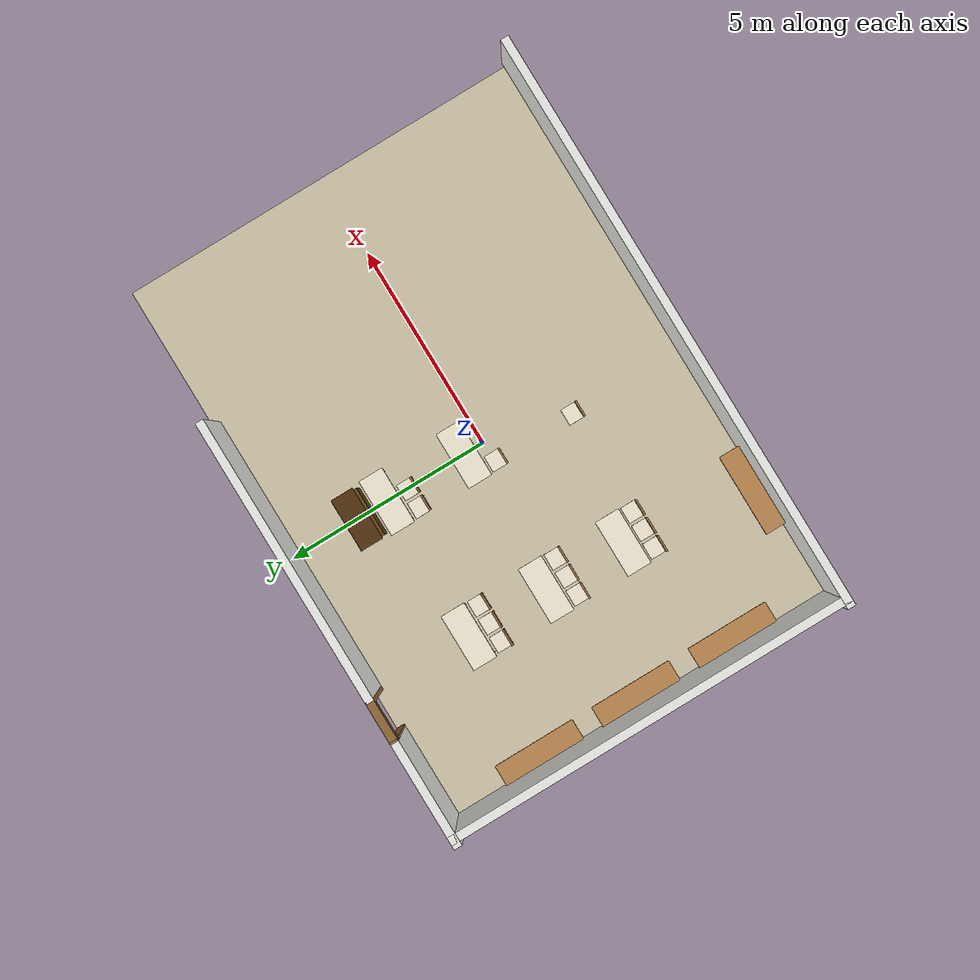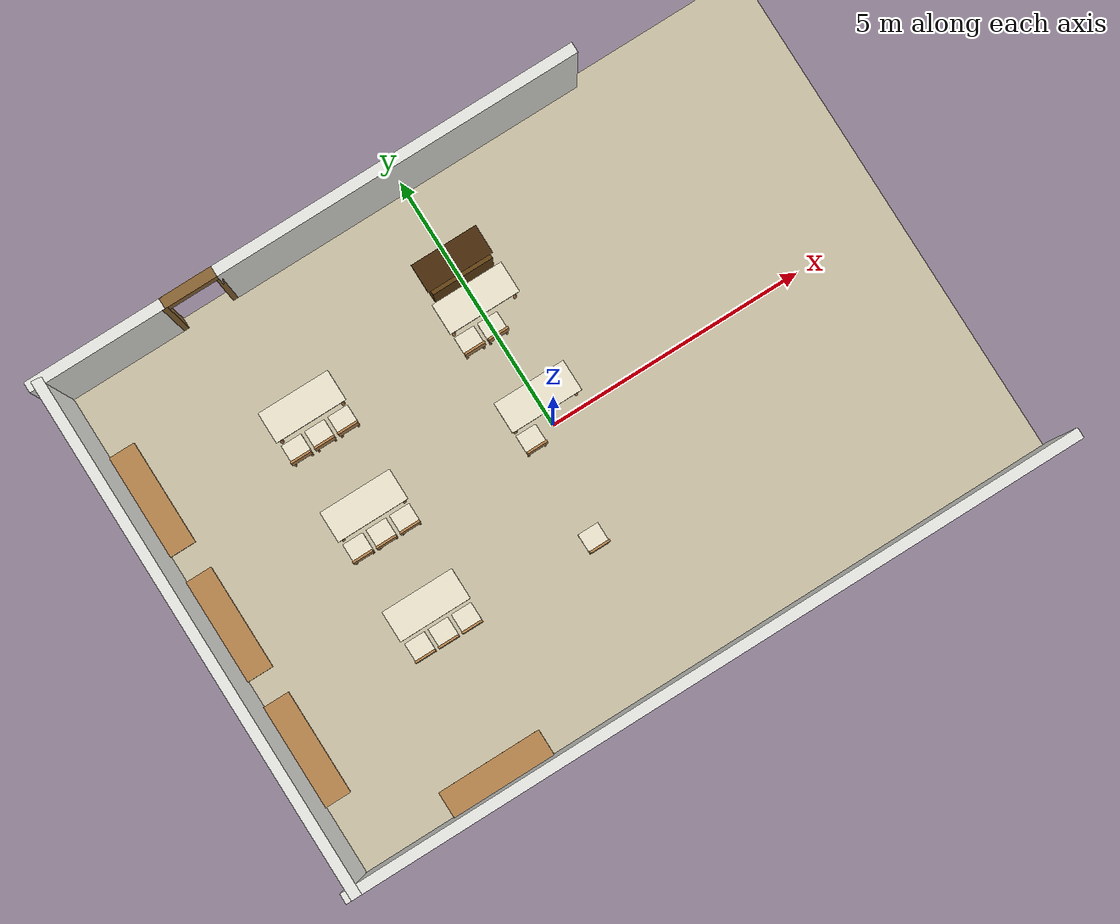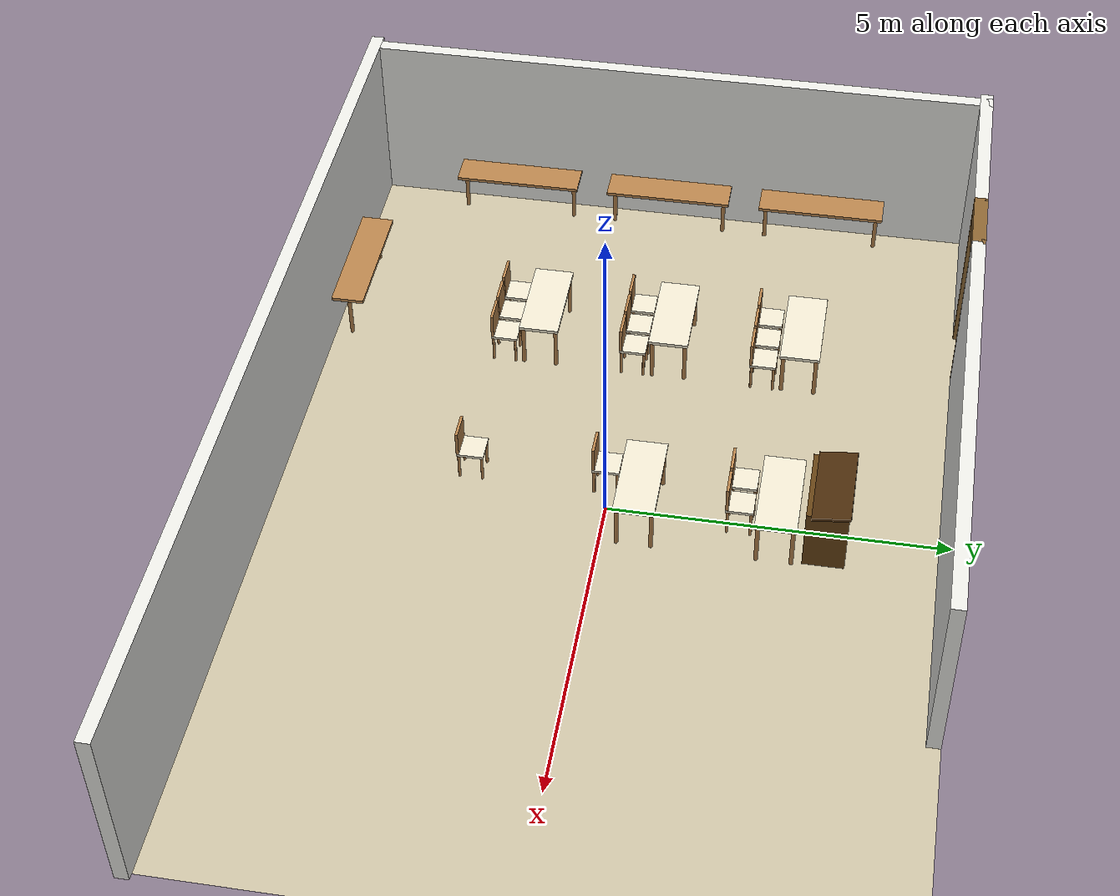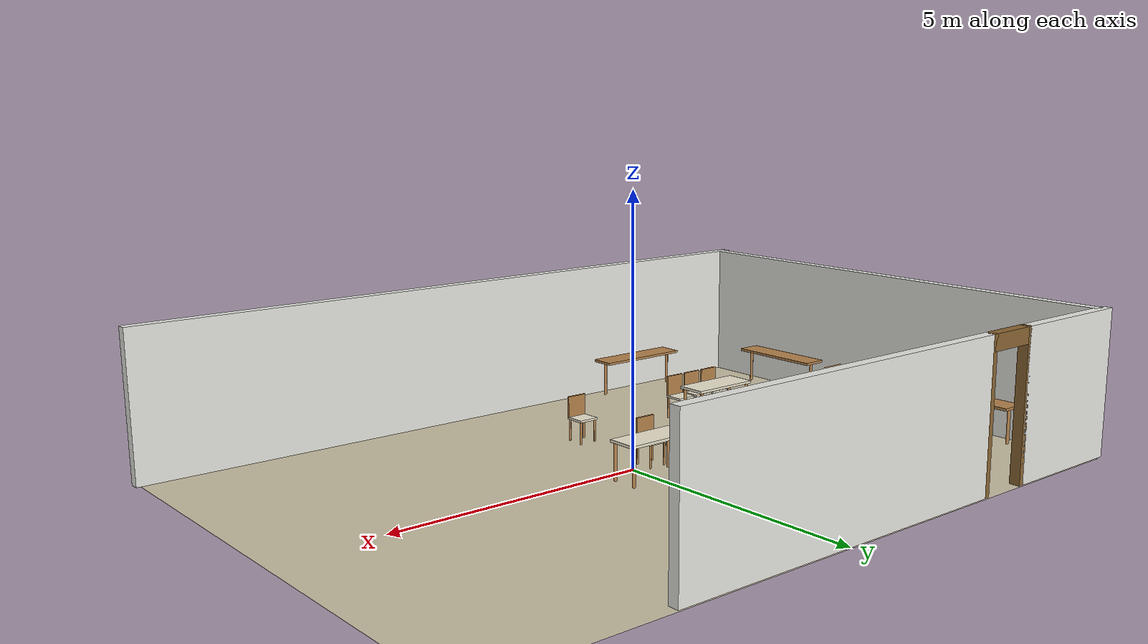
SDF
<sdf version="1.10">
 <world name="mecanum_classroom">
  <model name="floor">
   <static>true</static>
   <link name="link">
    <collision name="col">
     <geometry><plane><normal>0 0 1</normal><size>14 10</size></plane></geometry>
     <surface><friction><ode><mu>0.9</mu><mu2>0.9</mu2></ode></friction></surface>
    </collision>
    <visual name="vis">
     <geometry><plane><normal>0 0 1</normal><size>14 10</size></plane></geometry>
     <material><ambient>0.80 0.76 0.65 1</ambient><diffuse>0.80 0.76 0.65 1</diffuse></material>
    </visual>
   </link>
  </model>
  <model name="wall_north_A">
   <static>true</static>
   <pose>-5.8 4.9 1.4 0 0 0</pose>
   <link name="link">
    <collision name="col"><geometry><box><size>2.6 0.2 2.8</size></box></geometry></collision>
    <visual name="vis">
     <geometry><box><size>2.6 0.2 2.8</size></box></geometry>
     <material><ambient>0.92 0.92 0.90 1</ambient><diffuse>0.92 0.92 0.90 1</diffuse></material>
    </visual>
   </link>
  </model>
  <model name="wall_north_B">
   <static>true</static>
   <pose>0.0 4.9 1.4 0 0 0</pose>
   <link name="link">
    <collision name="col"><geometry><box><size>7.0 0.2 2.8</size></box></geometry></collision>
    <visual name="vis">
     <geometry><box><size>7.0 0.2 2.8</size></box></geometry>
     <material><ambient>0.92 0.92 0.90 1</ambient><diffuse>0.92 0.92 0.90 1</diffuse></material>
    </visual>
   </link>
  </model>
  <model name="wall_south">
   <static>true</static>
   <pose>0.0 -4.9 1.4 0 0 0</pose>
   <link name="link">
    <collision name="col"><geometry><box><size>14.2 0.2 2.8</size></box></geometry></collision>
    <visual name="vis">
     <geometry><box><size>14.2 0.2 2.8</size></box></geometry>
     <material><ambient>0.92 0.92 0.90 1</ambient><diffuse>0.92 0.92 0.90 1</diffuse></material>
    </visual>
   </link>
  </model>
  <model name="wall_west">
   <static>true</static>
   <pose>-6.9 0.0 1.4 0 0 0</pose>
   <link name="link">
    <collision name="col"><geometry><box><size>0.2 10.0 2.8</size></box></geometry></collision>
    <visual name="vis">
     <geometry><box><size>0.2 10.0 2.8</size></box></geometry>
     <material><ambient>0.92 0.92 0.90 1</ambient><diffuse>0.92 0.92 0.90 1</diffuse></material>
    </visual>
   </link>
  </model>
  <model name="door_pillar_LL">
   <static>true</static>
   <pose>-4.5 4.9 1.4 0 0 0</pose>
   <link name="link">
    <collision name="col"><geometry><box><size>0.1 0.2 2.8</size></box></geometry></collision>
    <visual name="vis">
     <geometry><box><size>0.1 0.2 2.8</size></box></geometry>
     <material><ambient>0.55 0.40 0.20 1</ambient><diffuse>0.55 0.40 0.20 1</diffuse></material>
    </visual>
   </link>
  </model>
  <model name="door_pillar_LR">
   <static>true</static>
   <pose>-3.5 4.9 1.4 0 0 0</pose>
   <link name="link">
    <collision name="col"><geometry><box><size>0.1 0.2 2.8</size></box></geometry></collision>
    <visual name="vis">
     <geometry><box><size>0.1 0.2 2.8</size></box></geometry>
     <material><ambient>0.55 0.40 0.20 1</ambient><diffuse>0.55 0.40 0.20 1</diffuse></material>
    </visual>
   </link>
  </model>
  <model name="door_L_lintel">
   <static>true</static>
   <pose>-4.0 4.9 2.65 0 0 0</pose>
   <link name="link">
    <collision name="col"><geometry><box><size>1.0 0.2 0.3</size></box></geometry></collision>
    <visual name="vis">
     <geometry><box><size>1.0 0.2 0.3</size></box></geometry>
     <material><ambient>0.55 0.40 0.20 1</ambient><diffuse>0.55 0.40 0.20 1</diffuse></material>
    </visual>
   </link>
  </model>
  <model name="teacher_stand_base">
   <static>true</static>
   <pose>0 3.2 0.5 0 0 0</pose>
   <link name="link">
    <collision name="col"><geometry><box><size>1.2 0.6 1.0</size></box></geometry></collision>
    <visual name="vis">
     <geometry><box><size>1.2 0.6 1.0</size></box></geometry>
     <material><ambient>0.40 0.26 0.08 1</ambient><diffuse>0.40 0.26 0.08 1</diffuse></material>
    </visual>
   </link>
  </model>
  <model name="teacher_stand_top">
   <static>true</static>
   <pose>0 3.25 1.02 0.12 0 0</pose>
   <link name="link">
    <collision name="col"><geometry><box><size>1.3 0.55 0.05</size></box></geometry></collision>
    <visual name="vis">
     <geometry><box><size>1.3 0.55 0.05</size></box></geometry>
     <material><ambient>0.30 0.18 0.05 1</ambient><diffuse>0.30 0.18 0.05 1</diffuse></material>
    </visual>
   </link>
  </model>
  <model name="tbl_r1c1_top">
   <static>true</static>
   <pose>-3.5 2.5 0.73 0 0 0</pose>
   <link name="link">
    <collision name="col"><geometry><box><size>1.4 0.6 0.05</size></box></geometry></collision>
    <visual name="vis">
     <geometry><box><size>1.4 0.6 0.05</size></box></geometry>
     <material><ambient>0.94 0.91 0.82 1</ambient><diffuse>0.94 0.91 0.82 1</diffuse></material>
    </visual>
   </link>
  </model>
  <model name="tbl_r1c1_legs">
   <static>true</static>
   <pose>-3.5 2.5 0.36 0 0 0</pose>
   <link name="link">
    <collision name="col"><geometry><box><size>1.4 0.6 0.72</size></box></geometry></collision>
    <visual name="leg_fl">
     <pose>-0.62 -0.25 0 0 0 0</pose>
     <geometry><cylinder><radius>0.03</radius><length>0.72</length></cylinder></geometry>
     <material><ambient>0.72 0.52 0.30 1</ambient><diffuse>0.72 0.52 0.30 1</diffuse></material>
    </visual>
    <visual name="leg_fr">
     <pose>0.62 -0.25 0 0 0 0</pose>
     <geometry><cylinder><radius>0.03</radius><length>0.72</length></cylinder></geometry>
     <material><ambient>0.72 0.52 0.30 1</ambient><diffuse>0.72 0.52 0.30 1</diffuse></material>
    </visual>
    <visual name="leg_bl">
     <pose>-0.62 0.25 0 0 0 0</pose>
     <geometry><cylinder><radius>0.03</radius><length>0.72</length></cylinder></geometry>
     <material><ambient>0.72 0.52 0.30 1</ambient><diffuse>0.72 0.52 0.30 1</diffuse></material>
    </visual>
    <visual name="leg_br">
     <pose>0.62 0.25 0 0 0 0</pose>
     <geometry><cylinder><radius>0.03</radius><length>0.72</length></cylinder></geometry>
     <material><ambient>0.72 0.52 0.30 1</ambient><diffuse>0.72 0.52 0.30 1</diffuse></material>
    </visual>
   </link>
  </model>
  <model name="chr_r1c1_a">
   <static>true</static>
   <pose>-3.97 1.95 0.45 0 0 0</pose>
   <link name="link">
    <visual name="seat">
     <geometry><box><size>0.40 0.40 0.04</size></box></geometry>
     <material><ambient>0.94 0.91 0.82 1</ambient><diffuse>0.94 0.91 0.82 1</diffuse></material>
    </visual>
    <visual name="back">
     <pose>0 -0.18 0.22 0 0 0</pose>
     <geometry><box><size>0.40 0.04 0.40</size></box></geometry>
     <material><ambient>0.72 0.52 0.30 1</ambient><diffuse>0.72 0.52 0.30 1</diffuse></material>
    </visual>
    <visual name="leg_fl">
     <pose>-0.17 -0.17 -0.225 0 0 0</pose>
     <geometry><cylinder><radius>0.02</radius><length>0.45</length></cylinder></geometry>
     <material><ambient>0.72 0.52 0.30 1</ambient><diffuse>0.72 0.52 0.30 1</diffuse></material>
    </visual>
    <visual name="leg_fr">
     <pose>0.17 -0.17 -0.225 0 0 0</pose>
     <geometry><cylinder><radius>0.02</radius><length>0.45</length></cylinder></geometry>
     <material><ambient>0.72 0.52 0.30 1</ambient><diffuse>0.72 0.52 0.30 1</diffuse></material>
    </visual>
    <visual name="leg_bl">
     <pose>-0.17 0.17 -0.225 0 0 0</pose>
     <geometry><cylinder><radius>0.02</radius><length>0.45</length></cylinder></geometry>
     <material><ambient>0.72 0.52 0.30 1</ambient><diffuse>0.72 0.52 0.30 1</diffuse></material>
    </visual>
    <visual name="leg_br">
     <pose>0.17 0.17 -0.225 0 0 0</pose>
     <geometry><cylinder><radius>0.02</radius><length>0.45</length></cylinder></geometry>
     <material><ambient>0.72 0.52 0.30 1</ambient><diffuse>0.72 0.52 0.30 1</diffuse></material>
    </visual>
    <collision name="col"><geometry><box><size>0.40 0.40 0.04</size></box></geometry></collision>
   </link>
  </model>
  <model name="chr_r1c1_b">
   <static>true</static>
   <pose>-3.5 1.95 0.45 0 0 0</pose>
   <link name="link">
    <visual name="seat">
     <geometry><box><size>0.40 0.40 0.04</size></box></geometry>
     <material><ambient>0.94 0.91 0.82 1</ambient><diffuse>0.94 0.91 0.82 1</diffuse></material>
    </visual>
    <visual name="back">
     <pose>0 -0.18 0.22 0 0 0</pose>
     <geometry><box><size>0.40 0.04 0.40</size></box></geometry>
     <material><ambient>0.72 0.52 0.30 1</ambient><diffuse>0.72 0.52 0.30 1</diffuse></material>
    </visual>
    <visual name="leg_fl">
     <pose>-0.17 -0.17 -0.225 0 0 0</pose>
     <geometry><cylinder><radius>0.02</radius><length>0.45</length></cylinder></geometry>
     <material><ambient>0.72 0.52 0.30 1</ambient><diffuse>0.72 0.52 0.30 1</diffuse></material>
    </visual>
    <visual name="leg_fr">
     <pose>0.17 -0.17 -0.225 0 0 0</pose>
     <geometry><cylinder><radius>0.02</radius><length>0.45</length></cylinder></geometry>
     <material><ambient>0.72 0.52 0.30 1</ambient><diffuse>0.72 0.52 0.30 1</diffuse></material>
    </visual>
    <visual name="leg_bl">
     <pose>-0.17 0.17 -0.225 0 0 0</pose>
     <geometry><cylinder><radius>0.02</radius><length>0.45</length></cylinder></geometry>
     <material><ambient>0.72 0.52 0.30 1</ambient><diffuse>0.72 0.52 0.30 1</diffuse></material>
    </visual>
    <visual name="leg_br">
     <pose>0.17 0.17 -0.225 0 0 0</pose>
     <geometry><cylinder><radius>0.02</radius><length>0.45</length></cylinder></geometry>
     <material><ambient>0.72 0.52 0.30 1</ambient><diffuse>0.72 0.52 0.30 1</diffuse></material>
    </visual>
    <collision name="col"><geometry><box><size>0.40 0.40 0.04</size></box></geometry></collision>
   </link>
  </model>
  <model name="chr_r1c1_c">
   <static>true</static>
   <pose>-3.03 1.95 0.45 0 0 0</pose>
   <link name="link">
    <visual name="seat">
     <geometry><box><size>0.40 0.40 0.04</size></box></geometry>
     <material><ambient>0.94 0.91 0.82 1</ambient><diffuse>0.94 0.91 0.82 1</diffuse></material>
    </visual>
    <visual name="back">
     <pose>0 -0.18 0.22 0 0 0</pose>
     <geometry><box><size>0.40 0.04 0.40</size></box></geometry>
     <material><ambient>0.72 0.52 0.30 1</ambient><diffuse>0.72 0.52 0.30 1</diffuse></material>
    </visual>
    <visual name="leg_fl">
     <pose>-0.17 -0.17 -0.225 0 0 0</pose>
     <geometry><cylinder><radius>0.02</radius><length>0.45</length></cylinder></geometry>
     <material><ambient>0.72 0.52 0.30 1</ambient><diffuse>0.72 0.52 0.30 1</diffuse></material>
    </visual>
    <visual name="leg_fr">
     <pose>0.17 -0.17 -0.225 0 0 0</pose>
     <geometry><cylinder><radius>0.02</radius><length>0.45</length></cylinder></geometry>
     <material><ambient>0.72 0.52 0.30 1</ambient><diffuse>0.72 0.52 0.30 1</diffuse></material>
    </visual>
    <visual name="leg_bl">
     <pose>-0.17 0.17 -0.225 0 0 0</pose>
     <geometry><cylinder><radius>0.02</radius><length>0.45</length></cylinder></geometry>
     <material><ambient>0.72 0.52 0.30 1</ambient><diffuse>0.72 0.52 0.30 1</diffuse></material>
    </visual>
    <visual name="leg_br">
     <pose>0.17 0.17 -0.225 0 0 0</pose>
     <geometry><cylinder><radius>0.02</radius><length>0.45</length></cylinder></geometry>
     <material><ambient>0.72 0.52 0.30 1</ambient><diffuse>0.72 0.52 0.30 1</diffuse></material>
    </visual>
    <collision name="col"><geometry><box><size>0.40 0.40 0.04</size></box></geometry></collision>
   </link>
  </model>
  <model name="tbl_r1c2_top">
   <static>true</static>
   <pose>0.0 2.5 0.73 0 0 0</pose>
   <link name="link">
    <collision name="col"><geometry><box><size>1.4 0.6 0.05</size></box></geometry></collision>
    <visual name="vis">
     <geometry><box><size>1.4 0.6 0.05</size></box></geometry>
     <material><ambient>0.94 0.91 0.82 1</ambient><diffuse>0.94 0.91 0.82 1</diffuse></material>
    </visual>
   </link>
  </model>
  <model name="tbl_r1c2_legs">
   <static>true</static>
   <pose>0.0 2.5 0.36 0 0 0</pose>
   <link name="link">
    <collision name="col"><geometry><box><size>1.4 0.6 0.72</size></box></geometry></collision>
    <visual name="leg_fl">
     <pose>-0.62 -0.25 0 0 0 0</pose>
     <geometry><cylinder><radius>0.03</radius><length>0.72</length></cylinder></geometry>
     <material><ambient>0.72 0.52 0.30 1</ambient><diffuse>0.72 0.52 0.30 1</diffuse></material>
    </visual>
    <visual name="leg_fr">
     <pose>0.62 -0.25 0 0 0 0</pose>
     <geometry><cylinder><radius>0.03</radius><length>0.72</length></cylinder></geometry>
     <material><ambient>0.72 0.52 0.30 1</ambient><diffuse>0.72 0.52 0.30 1</diffuse></material>
    </visual>
    <visual name="leg_bl">
     <pose>-0.62 0.25 0 0 0 0</pose>
     <geometry><cylinder><radius>0.03</radius><length>0.72</length></cylinder></geometry>
     <material><ambient>0.72 0.52 0.30 1</ambient><diffuse>0.72 0.52 0.30 1</diffuse></material>
    </visual>
    <visual name="leg_br">
     <pose>0.62 0.25 0 0 0 0</pose>
     <geometry><cylinder><radius>0.03</radius><length>0.72</length></cylinder></geometry>
     <material><ambient>0.72 0.52 0.30 1</ambient><diffuse>0.72 0.52 0.30 1</diffuse></material>
    </visual>
   </link>
  </model>
  <model name="chr_r1c2_a">
   <static>true</static>
   <pose>-0.47 1.95 0.45 0 0 0</pose>
   <link name="link">
    <visual name="seat">
     <geometry><box><size>0.40 0.40 0.04</size></box></geometry>
     <material><ambient>0.94 0.91 0.82 1</ambient><diffuse>0.94 0.91 0.82 1</diffuse></material>
    </visual>
    <visual name="back">
     <pose>0 -0.18 0.22 0 0 0</pose>
     <geometry><box><size>0.40 0.04 0.40</size></box></geometry>
     <material><ambient>0.72 0.52 0.30 1</ambient><diffuse>0.72 0.52 0.30 1</diffuse></material>
    </visual>
    <visual name="leg_fl">
     <pose>-0.17 -0.17 -0.225 0 0 0</pose>
     <geometry><cylinder><radius>0.02</radius><length>0.45</length></cylinder></geometry>
     <material><ambient>0.72 0.52 0.30 1</ambient><diffuse>0.72 0.52 0.30 1</diffuse></material>
    </visual>
    <visual name="leg_fr">
     <pose>0.17 -0.17 -0.225 0 0 0</pose>
     <geometry><cylinder><radius>0.02</radius><length>0.45</length></cylinder></geometry>
     <material><ambient>0.72 0.52 0.30 1</ambient><diffuse>0.72 0.52 0.30 1</diffuse></material>
    </visual>
    <visual name="leg_bl">
     <pose>-0.17 0.17 -0.225 0 0 0</pose>
     <geometry><cylinder><radius>0.02</radius><length>0.45</length></cylinder></geometry>
     <material><ambient>0.72 0.52 0.30 1</ambient><diffuse>0.72 0.52 0.30 1</diffuse></material>
    </visual>
    <visual name="leg_br">
     <pose>0.17 0.17 -0.225 0 0 0</pose>
     <geometry><cylinder><radius>0.02</radius><length>0.45</length></cylinder></geometry>
     <material><ambient>0.72 0.52 0.30 1</ambient><diffuse>0.72 0.52 0.30 1</diffuse></material>
    </visual>
    <collision name="col"><geometry><box><size>0.40 0.40 0.04</size></box></geometry></collision>
   </link>
  </model>
  <model name="chr_r1c2_b">
   <static>true</static>
   <pose>0.0 1.95 0.45 0 0 0</pose>
   <link name="link">
    <visual name="seat">
     <geometry><box><size>0.40 0.40 0.04</size></box></geometry>
     <material><ambient>0.94 0.91 0.82 1</ambient><diffuse>0.94 0.91 0.82 1</diffuse></material>
    </visual>
    <visual name="back">
     <pose>0 -0.18 0.22 0 0 0</pose>
     <geometry><box><size>0.40 0.04 0.40</size></box></geometry>
     <material><ambient>0.72 0.52 0.30 1</ambient><diffuse>0.72 0.52 0.30 1</diffuse></material>
    </visual>
    <visual name="leg_fl">
     <pose>-0.17 -0.17 -0.225 0 0 0</pose>
     <geometry><cylinder><radius>0.02</radius><length>0.45</length></cylinder></geometry>
     <material><ambient>0.72 0.52 0.30 1</ambient><diffuse>0.72 0.52 0.30 1</diffuse></material>
    </visual>
    <visual name="leg_fr">
     <pose>0.17 -0.17 -0.225 0 0 0</pose>
     <geometry><cylinder><radius>0.02</radius><length>0.45</length></cylinder></geometry>
     <material><ambient>0.72 0.52 0.30 1</ambient><diffuse>0.72 0.52 0.30 1</diffuse></material>
    </visual>
    <visual name="leg_bl">
     <pose>-0.17 0.17 -0.225 0 0 0</pose>
     <geometry><cylinder><radius>0.02</radius><length>0.45</length></cylinder></geometry>
     <material><ambient>0.72 0.52 0.30 1</ambient><diffuse>0.72 0.52 0.30 1</diffuse></material>
    </visual>
    <visual name="leg_br">
     <pose>0.17 0.17 -0.225 0 0 0</pose>
     <geometry><cylinder><radius>0.02</radius><length>0.45</length></cylinder></geometry>
     <material><ambient>0.72 0.52 0.30 1</ambient><diffuse>0.72 0.52 0.30 1</diffuse></material>
    </visual>
    <collision name="col"><geometry><box><size>0.40 0.40 0.04</size></box></geometry></collision>
   </link>
  </model>
  <model name="tbl_r2c1_top">
   <static>true</static>
   <pose>-3.5 0.5 0.73 0 0 0</pose>
   <link name="link">
    <collision name="col"><geometry><box><size>1.4 0.6 0.05</size></box></geometry></collision>
    <visual name="vis">
     <geometry><box><size>1.4 0.6 0.05</size></box></geometry>
     <material><ambient>0.94 0.91 0.82 1</ambient><diffuse>0.94 0.91 0.82 1</diffuse></material>
    </visual>
   </link>
  </model>
  <model name="tbl_r2c1_legs">
   <static>true</static>
   <pose>-3.5 0.5 0.36 0 0 0</pose>
   <link name="link">
    <collision name="col"><geometry><box><size>1.4 0.6 0.72</size></box></geometry></collision>
    <visual name="leg_fl">
     <pose>-0.62 -0.25 0 0 0 0</pose>
     <geometry><cylinder><radius>0.03</radius><length>0.72</length></cylinder></geometry>
     <material><ambient>0.72 0.52 0.30 1</ambient><diffuse>0.72 0.52 0.30 1</diffuse></material>
    </visual>
    <visual name="leg_fr">
     <pose>0.62 -0.25 0 0 0 0</pose>
     <geometry><cylinder><radius>0.03</radius><length>0.72</length></cylinder></geometry>
     <material><ambient>0.72 0.52 0.30 1</ambient><diffuse>0.72 0.52 0.30 1</diffuse></material>
    </visual>
    <visual name="leg_bl">
     <pose>-0.62 0.25 0 0 0 0</pose>
     <geometry><cylinder><radius>0.03</radius><length>0.72</length></cylinder></geometry>
     <material><ambient>0.72 0.52 0.30 1</ambient><diffuse>0.72 0.52 0.30 1</diffuse></material>
    </visual>
    <visual name="leg_br">
     <pose>0.62 0.25 0 0 0 0</pose>
     <geometry><cylinder><radius>0.03</radius><length>0.72</length></cylinder></geometry>
     <material><ambient>0.72 0.52 0.30 1</ambient><diffuse>0.72 0.52 0.30 1</diffuse></material>
    </visual>
   </link>
  </model>
  <model name="chr_r2c1_a">
   <static>true</static>
   <pose>-3.97 -0.05 0.45 0 0 0</pose>
   <link name="link">
    <visual name="seat">
     <geometry><box><size>0.40 0.40 0.04</size></box></geometry>
     <material><ambient>0.94 0.91 0.82 1</ambient><diffuse>0.94 0.91 0.82 1</diffuse></material>
    </visual>
    <visual name="back">
     <pose>0 -0.18 0.22 0 0 0</pose>
     <geometry><box><size>0.40 0.04 0.40</size></box></geometry>
     <material><ambient>0.72 0.52 0.30 1</ambient><diffuse>0.72 0.52 0.30 1</diffuse></material>
    </visual>
    <visual name="leg_fl">
     <pose>-0.17 -0.17 -0.225 0 0 0</pose>
     <geometry><cylinder><radius>0.02</radius><length>0.45</length></cylinder></geometry>
     <material><ambient>0.72 0.52 0.30 1</ambient><diffuse>0.72 0.52 0.30 1</diffuse></material>
    </visual>
    <visual name="leg_fr">
     <pose>0.17 -0.17 -0.225 0 0 0</pose>
     <geometry><cylinder><radius>0.02</radius><length>0.45</length></cylinder></geometry>
     <material><ambient>0.72 0.52 0.30 1</ambient><diffuse>0.72 0.52 0.30 1</diffuse></material>
    </visual>
    <visual name="leg_bl">
     <pose>-0.17 0.17 -0.225 0 0 0</pose>
     <geometry><cylinder><radius>0.02</radius><length>0.45</length></cylinder></geometry>
     <material><ambient>0.72 0.52 0.30 1</ambient><diffuse>0.72 0.52 0.30 1</diffuse></material>
    </visual>
    <visual name="leg_br">
     <pose>0.17 0.17 -0.225 0 0 0</pose>
     <geometry><cylinder><radius>0.02</radius><length>0.45</length></cylinder></geometry>
     <material><ambient>0.72 0.52 0.30 1</ambient><diffuse>0.72 0.52 0.30 1</diffuse></material>
    </visual>
    <collision name="col"><geometry><box><size>0.40 0.40 0.04</size></box></geometry></collision>
   </link>
  </model>
  <model name="chr_r2c1_b">
   <static>true</static>
   <pose>-3.5 -0.05 0.45 0 0 0</pose>
   <link name="link">
    <visual name="seat">
     <geometry><box><size>0.40 0.40 0.04</size></box></geometry>
     <material><ambient>0.94 0.91 0.82 1</ambient><diffuse>0.94 0.91 0.82 1</diffuse></material>
    </visual>
    <visual name="back">
     <pose>0 -0.18 0.22 0 0 0</pose>
     <geometry><box><size>0.40 0.04 0.40</size></box></geometry>
     <material><ambient>0.72 0.52 0.30 1</ambient><diffuse>0.72 0.52 0.30 1</diffuse></material>
    </visual>
    <visual name="leg_fl">
     <pose>-0.17 -0.17 -0.225 0 0 0</pose>
     <geometry><cylinder><radius>0.02</radius><length>0.45</length></cylinder></geometry>
     <material><ambient>0.72 0.52 0.30 1</ambient><diffuse>0.72 0.52 0.30 1</diffuse></material>
    </visual>
    <visual name="leg_fr">
     <pose>0.17 -0.17 -0.225 0 0 0</pose>
     <geometry><cylinder><radius>0.02</radius><length>0.45</length></cylinder></geometry>
     <material><ambient>0.72 0.52 0.30 1</ambient><diffuse>0.72 0.52 0.30 1</diffuse></material>
    </visual>
    <visual name="leg_bl">
     <pose>-0.17 0.17 -0.225 0 0 0</pose>
     <geometry><cylinder><radius>0.02</radius><length>0.45</length></cylinder></geometry>
     <material><ambient>0.72 0.52 0.30 1</ambient><diffuse>0.72 0.52 0.30 1</diffuse></material>
    </visual>
    <visual name="leg_br">
     <pose>0.17 0.17 -0.225 0 0 0</pose>
     <geometry><cylinder><radius>0.02</radius><length>0.45</length></cylinder></geometry>
     <material><ambient>0.72 0.52 0.30 1</ambient><diffuse>0.72 0.52 0.30 1</diffuse></material>
    </visual>
    <collision name="col"><geometry><box><size>0.40 0.40 0.04</size></box></geometry></collision>
   </link>
  </model>
  <model name="chr_r2c1_c">
   <static>true</static>
   <pose>-3.03 -0.05 0.45 0 0 0</pose>
   <link name="link">
    <visual name="seat">
     <geometry><box><size>0.40 0.40 0.04</size></box></geometry>
     <material><ambient>0.94 0.91 0.82 1</ambient><diffuse>0.94 0.91 0.82 1</diffuse></material>
    </visual>
    <visual name="back">
     <pose>0 -0.18 0.22 0 0 0</pose>
     <geometry><box><size>0.40 0.04 0.40</size></box></geometry>
     <material><ambient>0.72 0.52 0.30 1</ambient><diffuse>0.72 0.52 0.30 1</diffuse></material>
    </visual>
    <visual name="leg_fl">
     <pose>-0.17 -0.17 -0.225 0 0 0</pose>
     <geometry><cylinder><radius>0.02</radius><length>0.45</length></cylinder></geometry>
     <material><ambient>0.72 0.52 0.30 1</ambient><diffuse>0.72 0.52 0.30 1</diffuse></material>
    </visual>
    <visual name="leg_fr">
     <pose>0.17 -0.17 -0.225 0 0 0</pose>
     <geometry><cylinder><radius>0.02</radius><length>0.45</length></cylinder></geometry>
     <material><ambient>0.72 0.52 0.30 1</ambient><diffuse>0.72 0.52 0.30 1</diffuse></material>
    </visual>
    <visual name="leg_bl">
     <pose>-0.17 0.17 -0.225 0 0 0</pose>
     <geometry><cylinder><radius>0.02</radius><length>0.45</length></cylinder></geometry>
     <material><ambient>0.72 0.52 0.30 1</ambient><diffuse>0.72 0.52 0.30 1</diffuse></material>
    </visual>
    <visual name="leg_br">
     <pose>0.17 0.17 -0.225 0 0 0</pose>
     <geometry><cylinder><radius>0.02</radius><length>0.45</length></cylinder></geometry>
     <material><ambient>0.72 0.52 0.30 1</ambient><diffuse>0.72 0.52 0.30 1</diffuse></material>
    </visual>
    <collision name="col"><geometry><box><size>0.40 0.40 0.04</size></box></geometry></collision>
   </link>
  </model>
  <model name="tbl_r2c2_top">
   <static>true</static>
   <pose>0.0 0.5 0.73 0 0 0</pose>
   <link name="link">
    <collision name="col"><geometry><box><size>1.4 0.6 0.05</size></box></geometry></collision>
    <visual name="vis">
     <geometry><box><size>1.4 0.6 0.05</size></box></geometry>
     <material><ambient>0.94 0.91 0.82 1</ambient><diffuse>0.94 0.91 0.82 1</diffuse></material>
    </visual>
   </link>
  </model>
  <model name="tbl_r2c2_legs">
   <static>true</static>
   <pose>0.0 0.5 0.36 0 0 0</pose>
   <link name="link">
    <collision name="col"><geometry><box><size>1.4 0.6 0.72</size></box></geometry></collision>
    <visual name="leg_fl">
     <pose>-0.62 -0.25 0 0 0 0</pose>
     <geometry><cylinder><radius>0.03</radius><length>0.72</length></cylinder></geometry>
     <material><ambient>0.72 0.52 0.30 1</ambient><diffuse>0.72 0.52 0.30 1</diffuse></material>
    </visual>
    <visual name="leg_fr">
     <pose>0.62 -0.25 0 0 0 0</pose>
     <geometry><cylinder><radius>0.03</radius><length>0.72</length></cylinder></geometry>
     <material><ambient>0.72 0.52 0.30 1</ambient><diffuse>0.72 0.52 0.30 1</diffuse></material>
    </visual>
    <visual name="leg_bl">
     <pose>-0.62 0.25 0 0 0 0</pose>
     <geometry><cylinder><radius>0.03</radius><length>0.72</length></cylinder></geometry>
     <material><ambient>0.72 0.52 0.30 1</ambient><diffuse>0.72 0.52 0.30 1</diffuse></material>
    </visual>
    <visual name="leg_br">
     <pose>0.62 0.25 0 0 0 0</pose>
     <geometry><cylinder><radius>0.03</radius><length>0.72</length></cylinder></geometry>
     <material><ambient>0.72 0.52 0.30 1</ambient><diffuse>0.72 0.52 0.30 1</diffuse></material>
    </visual>
   </link>
  </model>
  <model name="chr_r2c2_a">
   <static>true</static>
   <pose>-0.47 -0.05 0.45 0 0 0</pose>
   <link name="link">
    <visual name="seat">
     <geometry><box><size>0.40 0.40 0.04</size></box></geometry>
     <material><ambient>0.94 0.91 0.82 1</ambient><diffuse>0.94 0.91 0.82 1</diffuse></material>
    </visual>
    <visual name="back">
     <pose>0 -0.18 0.22 0 0 0</pose>
     <geometry><box><size>0.40 0.04 0.40</size></box></geometry>
     <material><ambient>0.72 0.52 0.30 1</ambient><diffuse>0.72 0.52 0.30 1</diffuse></material>
    </visual>
    <visual name="leg_fl">
     <pose>-0.17 -0.17 -0.225 0 0 0</pose>
     <geometry><cylinder><radius>0.02</radius><length>0.45</length></cylinder></geometry>
     <material><ambient>0.72 0.52 0.30 1</ambient><diffuse>0.72 0.52 0.30 1</diffuse></material>
    </visual>
    <visual name="leg_fr">
     <pose>0.17 -0.17 -0.225 0 0 0</pose>
     <geometry><cylinder><radius>0.02</radius><length>0.45</length></cylinder></geometry>
     <material><ambient>0.72 0.52 0.30 1</ambient><diffuse>0.72 0.52 0.30 1</diffuse></material>
    </visual>
    <visual name="leg_bl">
     <pose>-0.17 0.17 -0.225 0 0 0</pose>
     <geometry><cylinder><radius>0.02</radius><length>0.45</length></cylinder></geometry>
     <material><ambient>0.72 0.52 0.30 1</ambient><diffuse>0.72 0.52 0.30 1</diffuse></material>
    </visual>
    <visual name="leg_br">
     <pose>0.17 0.17 -0.225 0 0 0</pose>
     <geometry><cylinder><radius>0.02</radius><length>0.45</length></cylinder></geometry>
     <material><ambient>0.72 0.52 0.30 1</ambient><diffuse>0.72 0.52 0.30 1</diffuse></material>
    </visual>
    <collision name="col"><geometry><box><size>0.40 0.40 0.04</size></box></geometry></collision>
   </link>
  </model>
  <model name="tbl_r3c1_top">
   <static>true</static>
   <pose>-3.5 -1.5 0.73 0 0 0</pose>
   <link name="link">
    <collision name="col"><geometry><box><size>1.4 0.6 0.05</size></box></geometry></collision>
    <visual name="vis">
     <geometry><box><size>1.4 0.6 0.05</size></box></geometry>
     <material><ambient>0.94 0.91 0.82 1</ambient><diffuse>0.94 0.91 0.82 1</diffuse></material>
    </visual>
   </link>
  </model>
  <model name="tbl_r3c1_legs">
   <static>true</static>
   <pose>-3.5 -1.5 0.36 0 0 0</pose>
   <link name="link">
    <collision name="col"><geometry><box><size>1.4 0.6 0.72</size></box></geometry></collision>
    <visual name="leg_fl">
     <pose>-0.62 -0.25 0 0 0 0</pose>
     <geometry><cylinder><radius>0.03</radius><length>0.72</length></cylinder></geometry>
     <material><ambient>0.72 0.52 0.30 1</ambient><diffuse>0.72 0.52 0.30 1</diffuse></material>
    </visual>
    <visual name="leg_fr">
     <pose>0.62 -0.25 0 0 0 0</pose>
     <geometry><cylinder><radius>0.03</radius><length>0.72</length></cylinder></geometry>
     <material><ambient>0.72 0.52 0.30 1</ambient><diffuse>0.72 0.52 0.30 1</diffuse></material>
    </visual>
    <visual name="leg_bl">
     <pose>-0.62 0.25 0 0 0 0</pose>
     <geometry><cylinder><radius>0.03</radius><length>0.72</length></cylinder></geometry>
     <material><ambient>0.72 0.52 0.30 1</ambient><diffuse>0.72 0.52 0.30 1</diffuse></material>
    </visual>
    <visual name="leg_br">
     <pose>0.62 0.25 0 0 0 0</pose>
     <geometry><cylinder><radius>0.03</radius><length>0.72</length></cylinder></geometry>
     <material><ambient>0.72 0.52 0.30 1</ambient><diffuse>0.72 0.52 0.30 1</diffuse></material>
    </visual>
   </link>
  </model>
  <model name="chr_r3c1_a">
   <static>true</static>
   <pose>-3.97 -2.05 0.45 0 0 0</pose>
   <link name="link">
    <visual name="seat">
     <geometry><box><size>0.40 0.40 0.04</size></box></geometry>
     <material><ambient>0.94 0.91 0.82 1</ambient><diffuse>0.94 0.91 0.82 1</diffuse></material>
    </visual>
    <visual name="back">
     <pose>0 -0.18 0.22 0 0 0</pose>
     <geometry><box><size>0.40 0.04 0.40</size></box></geometry>
     <material><ambient>0.72 0.52 0.30 1</ambient><diffuse>0.72 0.52 0.30 1</diffuse></material>
    </visual>
    <visual name="leg_fl">
     <pose>-0.17 -0.17 -0.225 0 0 0</pose>
     <geometry><cylinder><radius>0.02</radius><length>0.45</length></cylinder></geometry>
     <material><ambient>0.72 0.52 0.30 1</ambient><diffuse>0.72 0.52 0.30 1</diffuse></material>
    </visual>
    <visual name="leg_fr">
     <pose>0.17 -0.17 -0.225 0 0 0</pose>
     <geometry><cylinder><radius>0.02</radius><length>0.45</length></cylinder></geometry>
     <material><ambient>0.72 0.52 0.30 1</ambient><diffuse>0.72 0.52 0.30 1</diffuse></material>
    </visual>
    <visual name="leg_bl">
     <pose>-0.17 0.17 -0.225 0 0 0</pose>
     <geometry><cylinder><radius>0.02</radius><length>0.45</length></cylinder></geometry>
     <material><ambient>0.72 0.52 0.30 1</ambient><diffuse>0.72 0.52 0.30 1</diffuse></material>
    </visual>
    <visual name="leg_br">
     <pose>0.17 0.17 -0.225 0 0 0</pose>
     <geometry><cylinder><radius>0.02</radius><length>0.45</length></cylinder></geometry>
     <material><ambient>0.72 0.52 0.30 1</ambient><diffuse>0.72 0.52 0.30 1</diffuse></material>
    </visual>
    <collision name="col"><geometry><box><size>0.40 0.40 0.04</size></box></geometry></collision>
   </link>
  </model>
  <model name="chr_r3c1_b">
   <static>true</static>
   <pose>-3.5 -2.05 0.45 0 0 0</pose>
   <link name="link">
    <visual name="seat">
     <geometry><box><size>0.40 0.40 0.04</size></box></geometry>
     <material><ambient>0.94 0.91 0.82 1</ambient><diffuse>0.94 0.91 0.82 1</diffuse></material>
    </visual>
    <visual name="back">
     <pose>0 -0.18 0.22 0 0 0</pose>
     <geometry><box><size>0.40 0.04 0.40</size></box></geometry>
     <material><ambient>0.72 0.52 0.30 1</ambient><diffuse>0.72 0.52 0.30 1</diffuse></material>
    </visual>
    <visual name="leg_fl">
     <pose>-0.17 -0.17 -0.225 0 0 0</pose>
     <geometry><cylinder><radius>0.02</radius><length>0.45</length></cylinder></geometry>
     <material><ambient>0.72 0.52 0.30 1</ambient><diffuse>0.72 0.52 0.30 1</diffuse></material>
    </visual>
    <visual name="leg_fr">
     <pose>0.17 -0.17 -0.225 0 0 0</pose>
     <geometry><cylinder><radius>0.02</radius><length>0.45</length></cylinder></geometry>
     <material><ambient>0.72 0.52 0.30 1</ambient><diffuse>0.72 0.52 0.30 1</diffuse></material>
    </visual>
    <visual name="leg_bl">
     <pose>-0.17 0.17 -0.225 0 0 0</pose>
     <geometry><cylinder><radius>0.02</radius><length>0.45</length></cylinder></geometry>
     <material><ambient>0.72 0.52 0.30 1</ambient><diffuse>0.72 0.52 0.30 1</diffuse></material>
    </visual>
    <visual name="leg_br">
     <pose>0.17 0.17 -0.225 0 0 0</pose>
     <geometry><cylinder><radius>0.02</radius><length>0.45</length></cylinder></geometry>
     <material><ambient>0.72 0.52 0.30 1</ambient><diffuse>0.72 0.52 0.30 1</diffuse></material>
    </visual>
    <collision name="col"><geometry><box><size>0.40 0.40 0.04</size></box></geometry></collision>
   </link>
  </model>
  <model name="chr_r3c1_c">
   <static>true</static>
   <pose>-3.03 -2.05 0.45 0 0 0</pose>
   <link name="link">
    <visual name="seat">
     <geometry><box><size>0.40 0.40 0.04</size></box></geometry>
     <material><ambient>0.94 0.91 0.82 1</ambient><diffuse>0.94 0.91 0.82 1</diffuse></material>
    </visual>
    <visual name="back">
     <pose>0 -0.18 0.22 0 0 0</pose>
     <geometry><box><size>0.40 0.04 0.40</size></box></geometry>
     <material><ambient>0.72 0.52 0.30 1</ambient><diffuse>0.72 0.52 0.30 1</diffuse></material>
    </visual>
    <visual name="leg_fl">
     <pose>-0.17 -0.17 -0.225 0 0 0</pose>
     <geometry><cylinder><radius>0.02</radius><length>0.45</length></cylinder></geometry>
     <material><ambient>0.72 0.52 0.30 1</ambient><diffuse>0.72 0.52 0.30 1</diffuse></material>
    </visual>
    <visual name="leg_fr">
     <pose>0.17 -0.17 -0.225 0 0 0</pose>
     <geometry><cylinder><radius>0.02</radius><length>0.45</length></cylinder></geometry>
     <material><ambient>0.72 0.52 0.30 1</ambient><diffuse>0.72 0.52 0.30 1</diffuse></material>
    </visual>
    <visual name="leg_bl">
     <pose>-0.17 0.17 -0.225 0 0 0</pose>
     <geometry><cylinder><radius>0.02</radius><length>0.45</length></cylinder></geometry>
     <material><ambient>0.72 0.52 0.30 1</ambient><diffuse>0.72 0.52 0.30 1</diffuse></material>
    </visual>
    <visual name="leg_br">
     <pose>0.17 0.17 -0.225 0 0 0</pose>
     <geometry><cylinder><radius>0.02</radius><length>0.45</length></cylinder></geometry>
     <material><ambient>0.72 0.52 0.30 1</ambient><diffuse>0.72 0.52 0.30 1</diffuse></material>
    </visual>
    <collision name="col"><geometry><box><size>0.40 0.40 0.04</size></box></geometry></collision>
   </link>
  </model>
  <model name="chr_r3c2_a">
   <static>true</static>
   <pose>-0.47 -2.05 0.45 0 0 0</pose>
   <link name="link">
    <visual name="seat">
     <geometry><box><size>0.40 0.40 0.04</size></box></geometry>
     <material><ambient>0.94 0.91 0.82 1</ambient><diffuse>0.94 0.91 0.82 1</diffuse></material>
    </visual>
    <visual name="back">
     <pose>0 -0.18 0.22 0 0 0</pose>
     <geometry><box><size>0.40 0.04 0.40</size></box></geometry>
     <material><ambient>0.72 0.52 0.30 1</ambient><diffuse>0.72 0.52 0.30 1</diffuse></material>
    </visual>
    <visual name="leg_fl">
     <pose>-0.17 -0.17 -0.225 0 0 0</pose>
     <geometry><cylinder><radius>0.02</radius><length>0.45</length></cylinder></geometry>
     <material><ambient>0.72 0.52 0.30 1</ambient><diffuse>0.72 0.52 0.30 1</diffuse></material>
    </visual>
    <visual name="leg_fr">
     <pose>0.17 -0.17 -0.225 0 0 0</pose>
     <geometry><cylinder><radius>0.02</radius><length>0.45</length></cylinder></geometry>
     <material><ambient>0.72 0.52 0.30 1</ambient><diffuse>0.72 0.52 0.30 1</diffuse></material>
    </visual>
    <visual name="leg_bl">
     <pose>-0.17 0.17 -0.225 0 0 0</pose>
     <geometry><cylinder><radius>0.02</radius><length>0.45</length></cylinder></geometry>
     <material><ambient>0.72 0.52 0.30 1</ambient><diffuse>0.72 0.52 0.30 1</diffuse></material>
    </visual>
    <visual name="leg_br">
     <pose>0.17 0.17 -0.225 0 0 0</pose>
     <geometry><cylinder><radius>0.02</radius><length>0.45</length></cylinder></geometry>
     <material><ambient>0.72 0.52 0.30 1</ambient><diffuse>0.72 0.52 0.30 1</diffuse></material>
    </visual>
    <collision name="col"><geometry><box><size>0.40 0.40 0.04</size></box></geometry></collision>
   </link>
  </model>
  <model name="wall_tbl_w1">
   <static>true</static>
   <pose>-6.5 2.5 0.73 0 0 0</pose>
   <link name="link">
    <collision name="col"><geometry><box><size>0.5 2.0 0.05</size></box></geometry></collision>
    <visual name="vis">
     <geometry><box><size>0.5 2.0 0.05</size></box></geometry>
     <material><ambient>0.72 0.52 0.30 1</ambient><diffuse>0.72 0.52 0.30 1</diffuse></material>
    </visual>
   </link>
  </model>
  <model name="wall_tbl_w1_legs">
   <static>true</static>
   <pose>-6.5 2.5 0.36 0 0 0</pose>
   <link name="link">
    <collision name="col"><geometry><box><size>0.5 2.0 0.72</size></box></geometry></collision>
    <visual name="leg_a">
     <pose>0 -0.9 0 0 0 0</pose>
     <geometry><cylinder><radius>0.03</radius><length>0.72</length></cylinder></geometry>
     <material><ambient>0.72 0.52 0.30 1</ambient><diffuse>0.72 0.52 0.30 1</diffuse></material>
    </visual>
    <visual name="leg_b">
     <pose>0 0.9 0 0 0 0</pose>
     <geometry><cylinder><radius>0.03</radius><length>0.72</length></cylinder></geometry>
     <material><ambient>0.72 0.52 0.30 1</ambient><diffuse>0.72 0.52 0.30 1</diffuse></material>
    </visual>
   </link>
  </model>
  <model name="wall_tbl_w2">
   <static>true</static>
   <pose>-6.5 0.0 0.73 0 0 0</pose>
   <link name="link">
    <collision name="col"><geometry><box><size>0.5 2.0 0.05</size></box></geometry></collision>
    <visual name="vis">
     <geometry><box><size>0.5 2.0 0.05</size></box></geometry>
     <material><ambient>0.72 0.52 0.30 1</ambient><diffuse>0.72 0.52 0.30 1</diffuse></material>
    </visual>
   </link>
  </model>
  <model name="wall_tbl_w2_legs">
   <static>true</static>
   <pose>-6.5 0.0 0.36 0 0 0</pose>
   <link name="link">
    <collision name="col"><geometry><box><size>0.5 2.0 0.72</size></box></geometry></collision>
    <visual name="leg_a">
     <pose>0 -0.9 0 0 0 0</pose>
     <geometry><cylinder><radius>0.03</radius><length>0.72</length></cylinder></geometry>
     <material><ambient>0.72 0.52 0.30 1</ambient><diffuse>0.72 0.52 0.30 1</diffuse></material>
    </visual>
    <visual name="leg_b">
     <pose>0 0.9 0 0 0 0</pose>
     <geometry><cylinder><radius>0.03</radius><length>0.72</length></cylinder></geometry>
     <material><ambient>0.72 0.52 0.30 1</ambient><diffuse>0.72 0.52 0.30 1</diffuse></material>
    </visual>
   </link>
  </model>
  <model name="wall_tbl_w3">
   <static>true</static>
   <pose>-6.5 -2.5 0.73 0 0 0</pose>
   <link name="link">
    <collision name="col"><geometry><box><size>0.5 2.0 0.05</size></box></geometry></collision>
    <visual name="vis">
     <geometry><box><size>0.5 2.0 0.05</size></box></geometry>
     <material><ambient>0.72 0.52 0.30 1</ambient><diffuse>0.72 0.52 0.30 1</diffuse></material>
    </visual>
   </link>
  </model>
  <model name="wall_tbl_w3_legs">
   <static>true</static>
   <pose>-6.5 -2.5 0.36 0 0 0</pose>
   <link name="link">
    <collision name="col"><geometry><box><size>0.5 2.0 0.72</size></box></geometry></collision>
    <visual name="leg_a">
     <pose>0 -0.9 0 0 0 0</pose>
     <geometry><cylinder><radius>0.03</radius><length>0.72</length></cylinder></geometry>
     <material><ambient>0.72 0.52 0.30 1</ambient><diffuse>0.72 0.52 0.30 1</diffuse></material>
    </visual>
    <visual name="leg_b">
     <pose>0 0.9 0 0 0 0</pose>
     <geometry><cylinder><radius>0.03</radius><length>0.72</length></cylinder></geometry>
     <material><ambient>0.72 0.52 0.30 1</ambient><diffuse>0.72 0.52 0.30 1</diffuse></material>
    </visual>
   </link>
  </model>
  <model name="wall_tbl_s1">
   <static>true</static>
   <pose>-4.0 -4.55 0.73 0 0 0</pose>
   <link name="link">
    <collision name="col"><geometry><box><size>2.0 0.5 0.05</size></box></geometry></collision>
    <visual name="vis">
     <geometry><box><size>2.0 0.5 0.05</size></box></geometry>
     <material><ambient>0.72 0.52 0.30 1</ambient><diffuse>0.72 0.52 0.30 1</diffuse></material>
    </visual>
   </link>
  </model>
  <model name="wall_tbl_s1_legs">
   <static>true</static>
   <pose>-4.0 -4.55 0.36 0 0 0</pose>
   <link name="link">
    <collision name="col"><geometry><box><size>2.0 0.5 0.72</size></box></geometry></collision>
    <visual name="leg_a">
     <pose>-0.9 0 0 0 0 0</pose>
     <geometry><cylinder><radius>0.03</radius><length>0.72</length></cylinder></geometry>
     <material><ambient>0.72 0.52 0.30 1</ambient><diffuse>0.72 0.52 0.30 1</diffuse></material>
    </visual>
    <visual name="leg_b">
     <pose>0.9 0 0 0 0 0</pose>
     <geometry><cylinder><radius>0.03</radius><length>0.72</length></cylinder></geometry>
     <material><ambient>0.72 0.52 0.30 1</ambient><diffuse>0.72 0.52 0.30 1</diffuse></material>
    </visual>
   </link>
  </model>
 </world>
</sdf>
